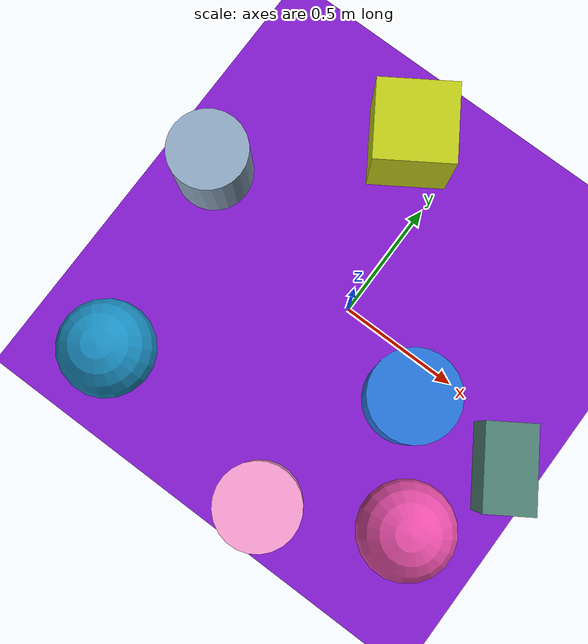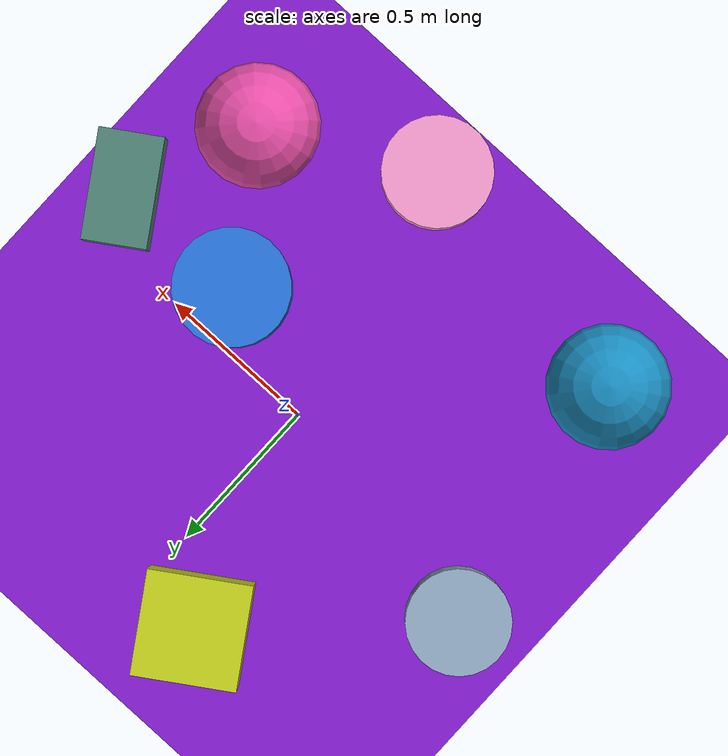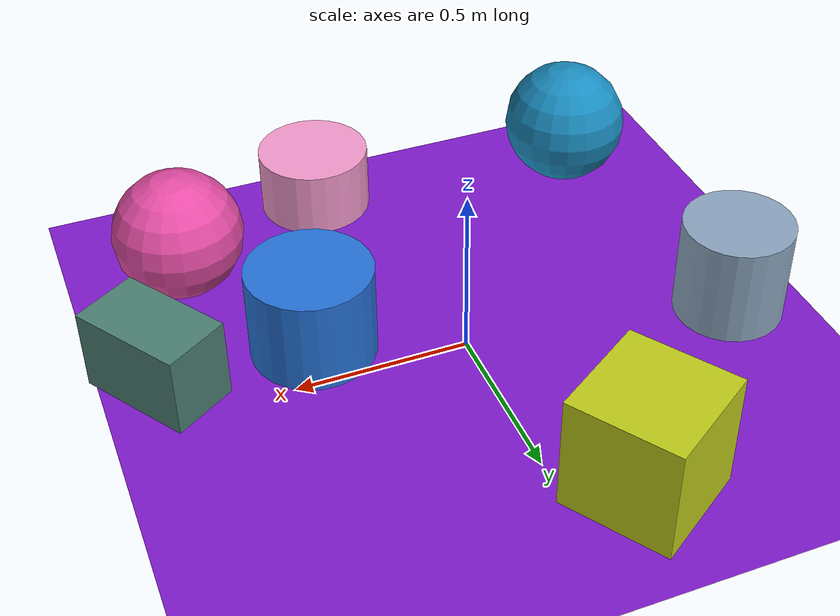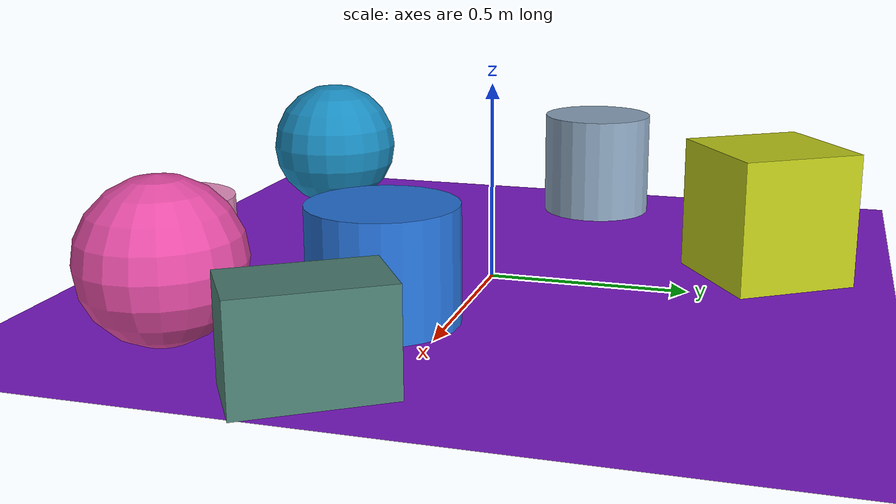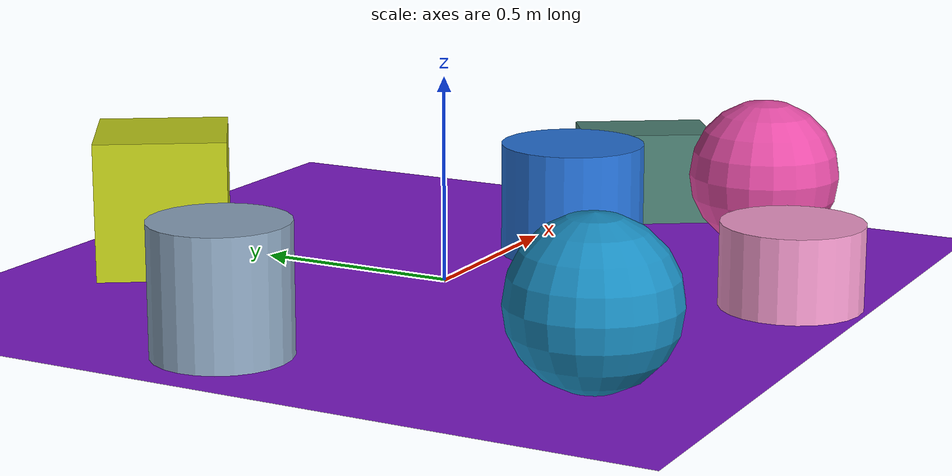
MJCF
<mujoco>
   <asset>
<texture type="skybox" builtin="gradient" rgb1="0.4 0.6 0.0" rgb2="0.1 0.8 0.4" width="500" height="500"/>
<texture name="checker_0" builtin="checker" rgb1="0.1 0.7 0.8" rgb2="0.5 0.3 0.1" width="500" height="500"/>
<texture name="checker_1" builtin="checker" rgb1="0.2 0.6 0.9" rgb2="0.1 0.3 0.8" width="500" height="500"/>
<texture name="checker_2" builtin="checker" rgb1="0.6 0.6 0.1" rgb2="0.9 1.0 0.1" width="500" height="500"/>
<texture name="checker_3" builtin="checker" rgb1="1.0 0.5 0.7" rgb2="0.8 0.1 0.6" width="500" height="500"/>
<texture name="gradient_4" builtin="gradient" rgb1="0.1 0.7 0.9" rgb2="0.1 0.4 0.6" width="500" height="500"/>
<texture name="checker_5" builtin="checker" rgb1="0.9 0.5 0.7" rgb2="1.0 0.7 0.9" width="500" height="500"/>
<texture name="checker_6" builtin="checker" rgb1="0.3 0.4 1.0" rgb2="0.8 0.9 0.5" width="500" height="500"/><material name="checker_0_mat" reflectance="0.38147280517136406" texrepeat="5 5" texture="checker_0" texuniform="false" />
<material name="checker_1_mat" reflectance="0.1342576165658549" texrepeat="10 10" texture="checker_1" texuniform="false" />
<material name="checker_2_mat" reflectance="0.681701726304509" texrepeat="7 7" texture="checker_2" texuniform="false" />
<material name="checker_3_mat" reflectance="0.5754780958270328" texrepeat="2 2" texture="checker_3" texuniform="false" />
<material name="gradient_4_mat" reflectance="0.7851223134751861" texture="gradient_4" texuniform="true"/>
<material name="checker_5_mat" reflectance="0.5134291437160796" texrepeat="10 10" texture="checker_5" texuniform="false" />
<material name="checker_6_mat" reflectance="0.308383578982933" texrepeat="9 9" texture="checker_6" texuniform="false" />
   </asset>

   <worldbody>
     <geom type="plane" size="1 1 0.1" rgba="0.5 0.1 0.8 1" />
<light pos="-0.8951988531311676 -0.9630786073707955 2" dir="0 0 -1" cutoff="90" diffuse="1 1 1" specular="1 1 1"/>
<geom type="box" pos="0.84 -0.15 0.12" size="0.1 0.17 0.12" material="checker_0_mat" euler="0 0 33" />
<geom type="cylinder" pos="0.4 -0.15 0.14" size="0.18 0.14 0.14" material="checker_1_mat" euler="0 0 19" />
<geom type="box" pos="-0.2 0.68 0.17" size="0.16 0.16 0.17" material="checker_2_mat" euler="0 0 33" />
<geom type="sphere" pos="0.67 -0.56 0.19" size="0.19 0.19 0.19" material="checker_3_mat" euler="0 0 10" />
<geom type="sphere" pos="-0.63 -0.69 0.19" size="0.19 0.19 0.19" material="gradient_4_mat" euler="0 0 14" />
<geom type="cylinder" pos="0.18 -0.82 0.1" size="0.17 0.1 0.1" material="checker_5_mat" euler="0 0 25" />
<geom type="cylinder" pos="-0.77 0.13 0.15" size="0.16 0.15 0.15" material="checker_6_mat" euler="0 0 73" /><camera euler="60 0 180" fovy="60" name="camera1" pos="-0.2 -1.5 1"></camera>   </worldbody>
   <visual>
      <headlight diffuse="0.7 0.7 0.7"/>
   </visual>
</mujoco>
